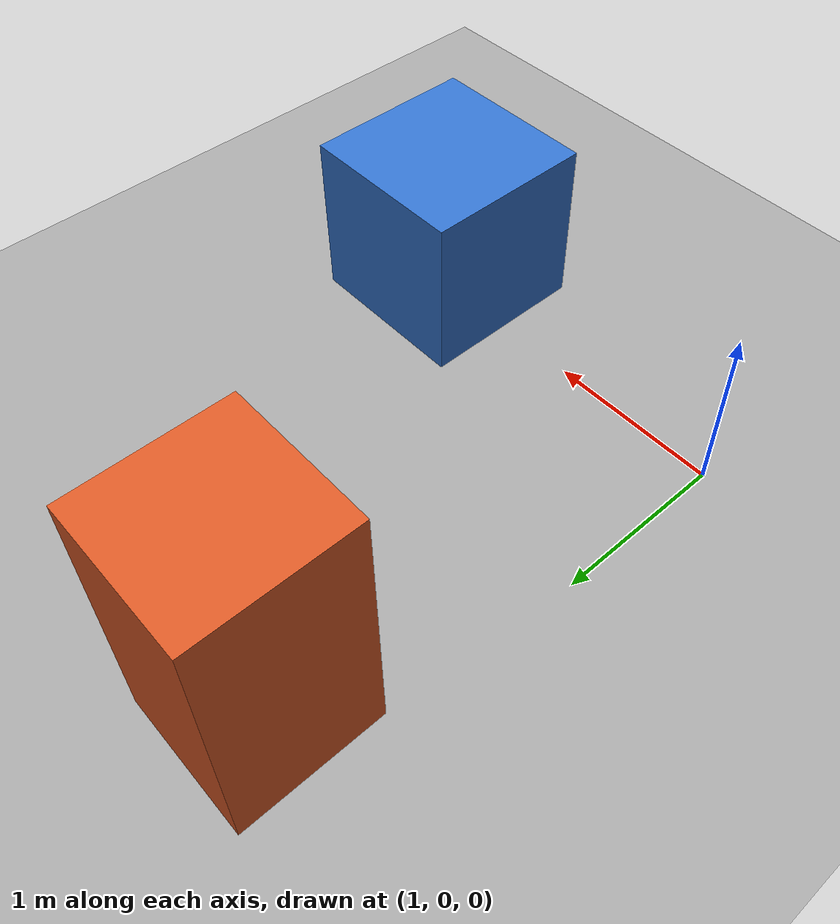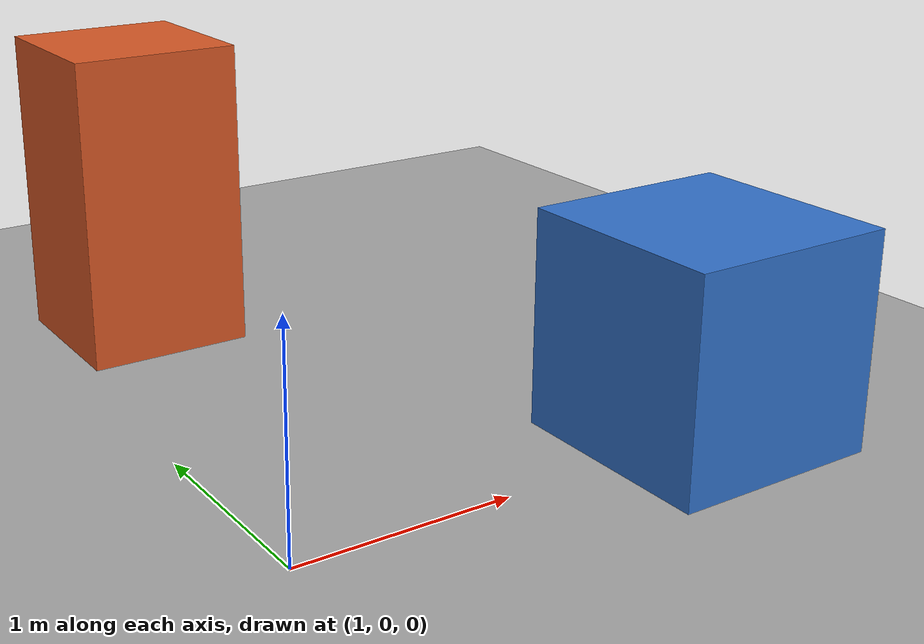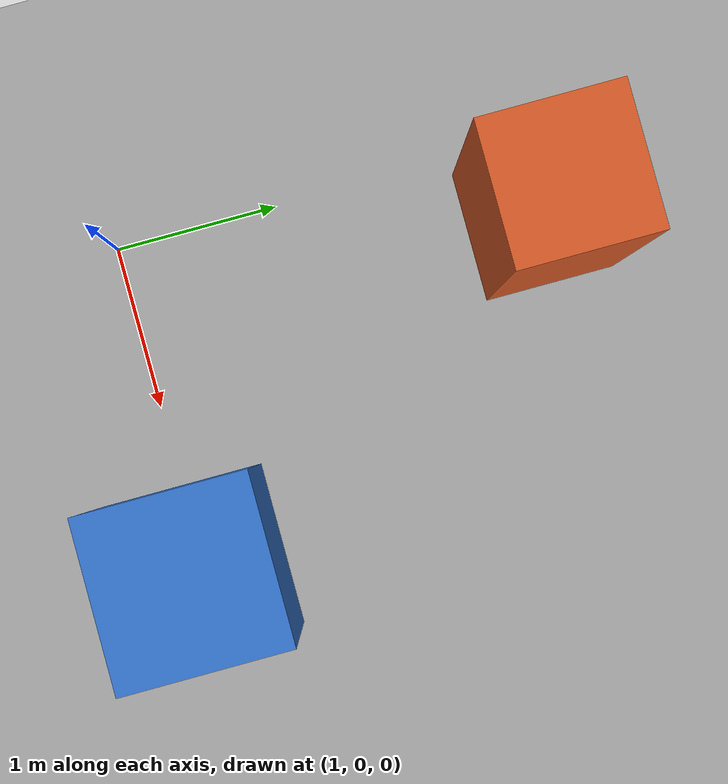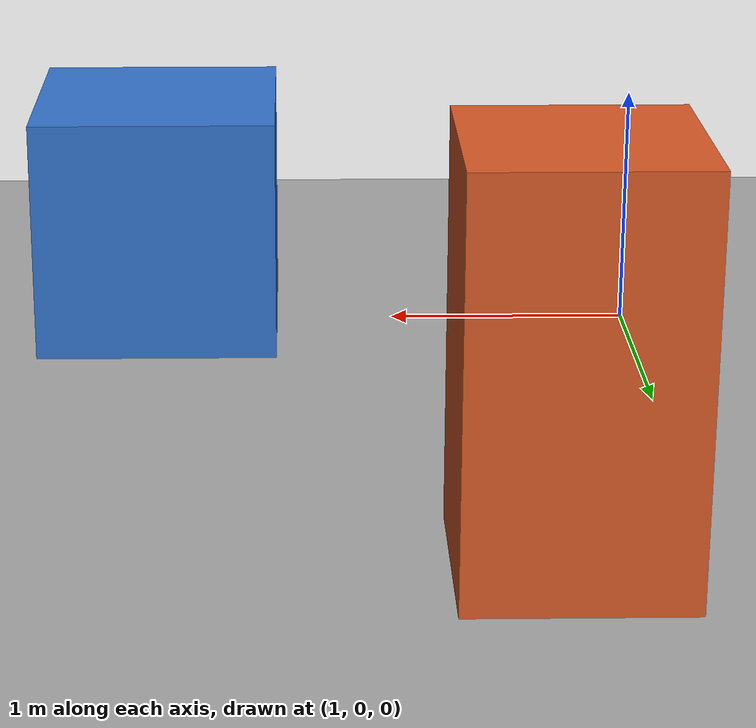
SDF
<?xml version="1.0"?>
<sdf version="1.10">
  <world name="empty">
    <physics name="physics" type="ignored">
      <max_step_size>0.001</max_step_size>
      <real_time_factor>1.0</real_time_factor>
    </physics>

    <plugin filename="gz-sim-physics-system"
            name="gz::sim::systems::Physics"/>
    <plugin filename="gz-sim-user-commands-system"
            name="gz::sim::systems::UserCommands"/>
    <plugin filename="gz-sim-scene-broadcaster-system"
            name="gz::sim::systems::SceneBroadcaster"/>
    <plugin filename="gz-sim-sensors-system"
            name="gz::sim::systems::Sensors">
      <render_engine>ogre2</render_engine>
    </plugin>
    <plugin filename="RGLServerPluginManager"
            name="rgl::RGLServerPluginManager">
      <do_ignore_entities_in_lidar_link>true</do_ignore_entities_in_lidar_link>
    </plugin>

    <light name="sun" type="directional">
      <cast_shadows>true</cast_shadows>
      <pose>0 0 10 0 0 0</pose>
      <diffuse>0.8 0.8 0.8 1</diffuse>
      <specular>0.2 0.2 0.2 1</specular>
      <attenuation>
        <range>1000</range>
        <constant>0.9</constant>
        <linear>0.01</linear>
        <quadratic>0.001</quadratic>
      </attenuation>
      <direction>-0.5 0.1 -0.9</direction>
    </light>

    <model name="ground_plane">
      <static>true</static>
      <link name="link">
        <collision name="collision">
          <geometry>
            <plane>
              <normal>0 0 1</normal>
              <size>50 50</size>
            </plane>
          </geometry>
        </collision>
        <visual name="visual">
          <geometry>
            <plane>
              <normal>0 0 1</normal>
              <size>50 50</size>
            </plane>
          </geometry>
          <material>
            <ambient>0.55 0.55 0.55 1</ambient>
            <diffuse>0.65 0.65 0.65 1</diffuse>
          </material>
        </visual>
      </link>
    </model>

    <!-- Box collisions only: Livox CPU raycaster ignores mesh/cylinder/sphere. -->
    <model name="box_front">
      <static>true</static>
      <pose>3 0 0.5 0 0 0</pose>
      <link name="link">
        <collision name="collision">
          <geometry><box><size>1 1 1</size></box></geometry>
        </collision>
        <visual name="visual">
          <geometry><box><size>1 1 1</size></box></geometry>
          <material>
            <ambient>0.2 0.45 0.8 1</ambient>
            <diffuse>0.2 0.45 0.8 1</diffuse>
          </material>
        </visual>
      </link>
    </model>
    <model name="box_left">
      <static>true</static>
      <pose>1.5 2.5 0.75 0 0 0</pose>
      <link name="link">
        <collision name="collision">
          <geometry><box><size>0.8 0.8 1.5</size></box></geometry>
        </collision>
        <visual name="visual">
          <geometry><box><size>0.8 0.8 1.5</size></box></geometry>
          <material>
            <ambient>0.85 0.35 0.15 1</ambient>
            <diffuse>0.85 0.35 0.15 1</diffuse>
          </material>
        </visual>
      </link>
    </model>
  </world>
</sdf>
